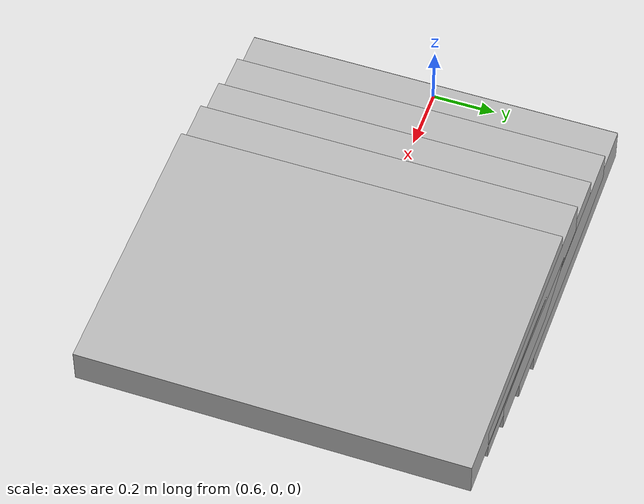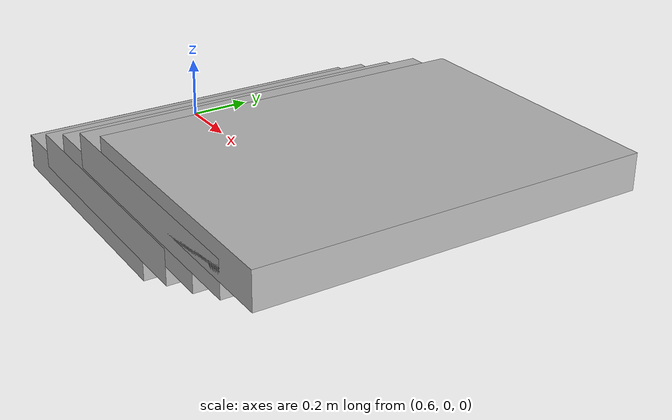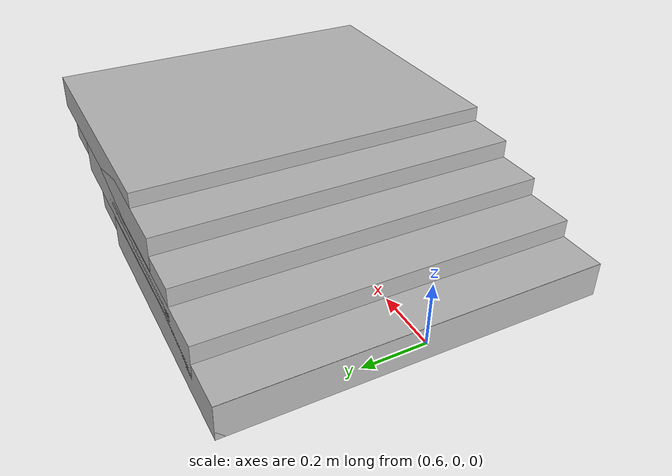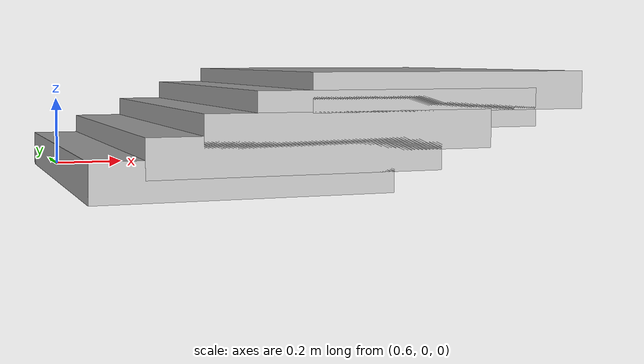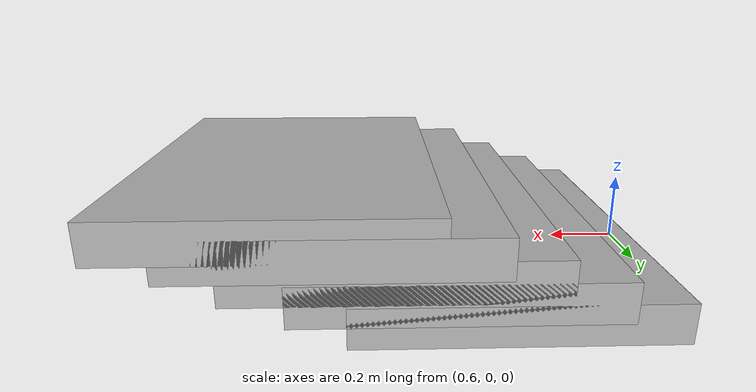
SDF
<?xml version="1.0"?>

<sdf version="1.5">

    <model name="stairs">

      <pose> 1.0336  0  0.0  0 0 0 </pose>

      <static>true</static>

      <link name="step1">

        <collision name="collision">

          <geometry>

            <box> <size>0.8672 1.2 0.1136</size> </box>

          </geometry>

        </collision>

        <visual name="visual">

          <geometry>

            <box> <size>0.8672 1.2 0.1136</size> </box>

          </geometry>

        </visual>

      </link>

      <link name="step_edge">

        <pose> -0.4336 0.0 0.0 1.57 0 1.57 </pose>

        <collision name="collision">

          <geometry>

            <box> <size>1.2 0.1136 0.001</size> </box>

          </geometry>

        </collision>

        <visual name="visual">

          <geometry>

            <box> <size>1.2 0.1136 0.001</size> </box>

          </geometry>

        </visual>

      </link>

      <link name="step2">

        <pose>   0.15  0  0.06  0 0 0 </pose>

        <collision name="collision">

          <geometry>

            <box> <size>0.8672 1.2 0.1136</size> </box>

          </geometry>

        </collision>

        <visual name="visual">

          <geometry>

            <box> <size>0.8672 1.2 0.1136</size> </box>

          </geometry>

        </visual>

      </link>

      <link name="step3">

        <pose>  0.31  0  0.12  0 0 0 </pose>

        <collision name="collision">

          <geometry>

            <box> <size>0.8672 1.2 0.1136</size> </box>

          </geometry>

        </collision>

        <visual name="visual">

          <geometry>

            <box> <size>0.8672 1.2 0.1136</size> </box>

          </geometry>

        </visual>

      </link>

      <link name="step4">

        <pose>  0.46  0  0.18  0 0 0 </pose>

        <collision name="collision">

          <geometry>

            <box> <size>0.8672 1.2 0.1136</size> </box>

          </geometry>

        </collision>

        <visual name="visual">

          <geometry>

            <box> <size>0.8672 1.2 0.1136</size> </box>

          </geometry>

        </visual>

      </link>

      <link name="step5">

        <pose>  0.62  0  0.23  0 0 0 </pose>

        <collision name="collision">

          <geometry>

            <box> <size>0.8672 1.2 0.1136</size> </box>

          </geometry>

        </collision>

        <visual name="visual">

          <geometry>

            <box> <size>0.8672 1.2 0.1136</size> </box>

          </geometry>

        </visual>

      </link>

    </model>

</sdf>
